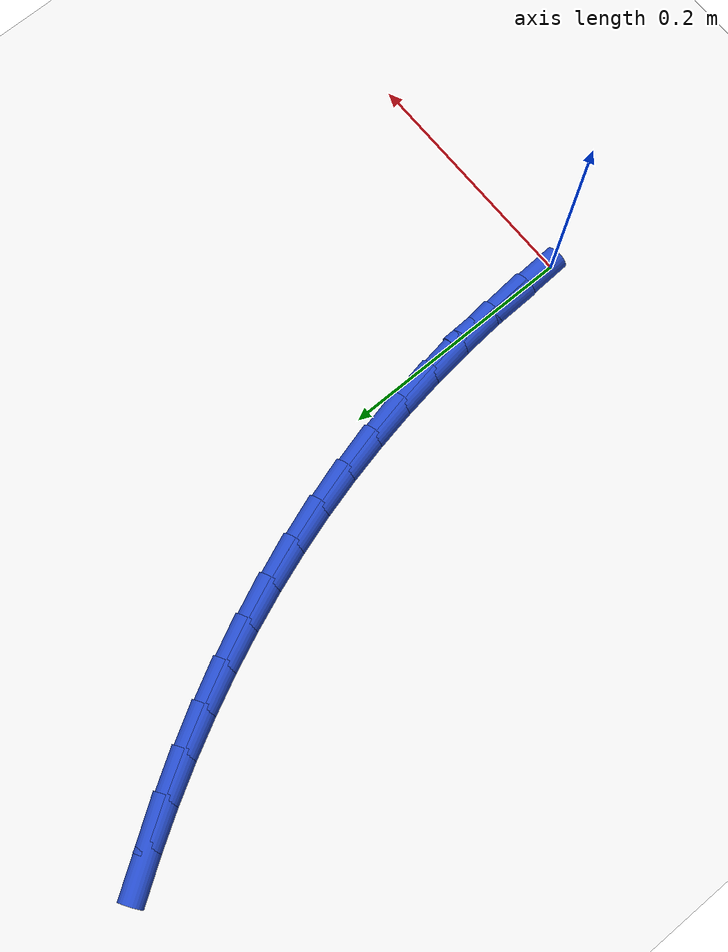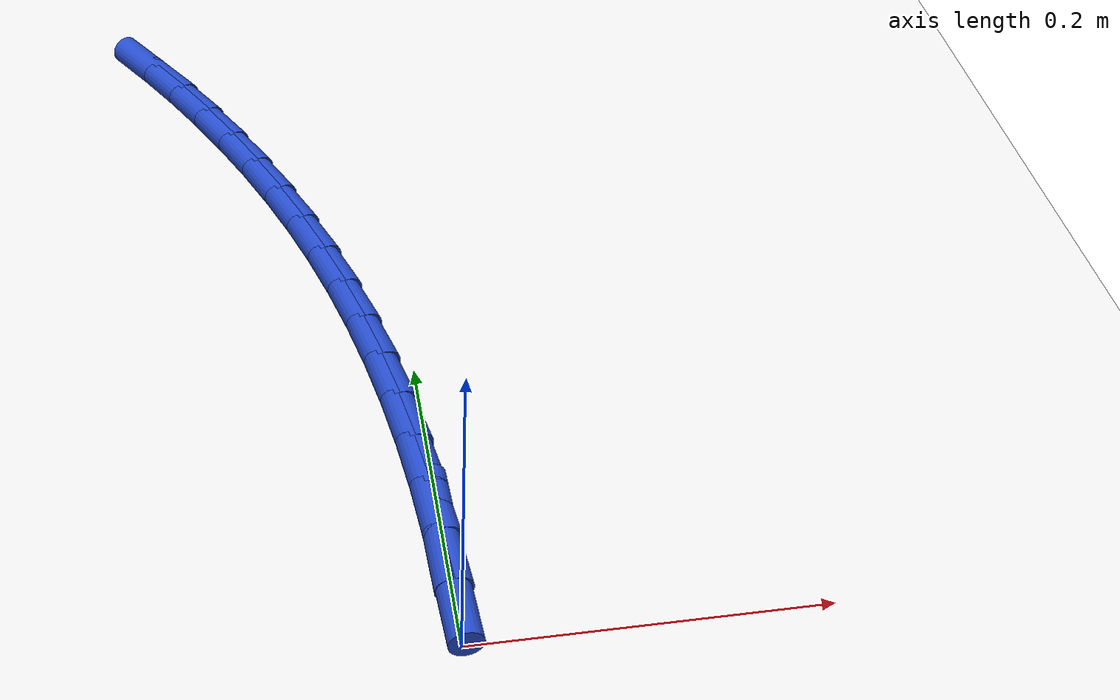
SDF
<sdf version="1.6">
 <world name="default">
  <model name="ground_plane">
   <static>1</static>
   <link name="link">
    <collision name="collision">
     <geometry><plane><normal>0 0 1</normal><size>100 100</size></plane></geometry>
     <surface><friction><ode><mu>100</mu><mu2>50</mu2></ode></friction></surface>
    </collision>
    <visual name="visual">
     <cast_shadows>0</cast_shadows>
     <geometry><plane><normal>0 0 1</normal><size>100 100</size></plane></geometry>
     <material>
      <script><uri>file://media/materials/scripts/gazebo.material</uri><name>Gazebo/WhiteGlow</name></script>
     </material>
    </visual>
   </link>
  </model>
  <model name="line">
   <link name="link_1">
    <pose>-0.0005671292059175227 0.034384046314379905 0.01 0 1.57 -1.5221937600335682</pose>
    <collision name="collision">
     <geometry><cylinder><radius>0.01</radius><length>0.08</length></cylinder></geometry>
    </collision>
    <visual name="visual">
     <material>
      <script><name>Gazebo/Blue</name><uri>file://media/materials/scripts/gazebo.material</uri></script>
     </material>
     <geometry><cylinder><radius>0.01</radius><length>0.08</length></cylinder></geometry>
    </visual>
   </link>
   <link name="link_2">
    <pose>-0.002233502790082787 0.06864275692588105 0.01 0 1.57 -1.4890286087418458</pose>
    <collision name="collision">
     <geometry><cylinder><radius>0.01</radius><length>0.08</length></cylinder></geometry>
    </collision>
    <visual name="visual">
     <material>
      <script><name>Gazebo/Blue</name><uri>file://media/materials/scripts/gazebo.material</uri></script>
     </material>
     <geometry><cylinder><radius>0.01</radius><length>0.08</length></cylinder></geometry>
    </visual>
   </link>
   <link name="link_3">
    <pose>-0.005029055808505154 0.10275548487936709 0.01 0 1.57 -1.4548206705582785</pose>
    <collision name="collision">
     <geometry><cylinder><radius>0.01</radius><length>0.08</length></cylinder></geometry>
    </collision>
    <visual name="visual">
     <material>
      <script><name>Gazebo/Blue</name><uri>file://media/materials/scripts/gazebo.material</uri></script>
     </material>
     <geometry><cylinder><radius>0.01</radius><length>0.08</length></cylinder></geometry>
    </visual>
   </link>
   <link name="link_4">
    <pose>-0.008983723317193992 0.13670158321970177 0.01 0 1.57 -1.4195926586835725</pose>
    <collision name="collision">
     <geometry><cylinder><radius>0.01</radius><length>0.08</length></cylinder></geometry>
    </collision>
    <visual name="visual">
     <material>
      <script><name>Gazebo/Blue</name><uri>file://media/materials/scripts/gazebo.material</uri></script>
     </material>
     <geometry><cylinder><radius>0.01</radius><length>0.08</length></cylinder></geometry>
    </visual>
   </link>
   <link name="link_5">
    <pose>-0.014127440372158667 0.17046040499174883 0.01 0 1.57 -1.3833787149878822</pose>
    <collision name="collision">
     <geometry><cylinder><radius>0.01</radius><length>0.08</length></cylinder></geometry>
    </collision>
    <visual name="visual">
     <material>
      <script><name>Gazebo/Blue</name><uri>file://media/materials/scripts/gazebo.material</uri></script>
     </material>
     <geometry><cylinder><radius>0.01</radius><length>0.08</length></cylinder></geometry>
    </visual>
   </link>
   <link name="link_6">
    <pose>-0.020490142029408548 0.2040113032403719 0.01 0 1.57 -1.3462252168017579</pose>
    <collision name="collision">
     <geometry><cylinder><radius>0.01</radius><length>0.08</length></cylinder></geometry>
    </collision>
    <visual name="visual">
     <material>
      <script><name>Gazebo/Blue</name><uri>file://media/materials/scripts/gazebo.material</uri></script>
     </material>
     <geometry><cylinder><radius>0.01</radius><length>0.08</length></cylinder></geometry>
    </visual>
   </link>
   <link name="link_7">
    <pose>-0.028101763344953012 0.2373336310104348 0.01 0 1.57 -1.3081913383421713</pose>
    <collision name="collision">
     <geometry><cylinder><radius>0.01</radius><length>0.08</length></cylinder></geometry>
    </collision>
    <visual name="visual">
     <material>
      <script><name>Gazebo/Blue</name><uri>file://media/materials/scripts/gazebo.material</uri></script>
     </material>
     <geometry><cylinder><radius>0.01</radius><length>0.08</length></cylinder></geometry>
    </visual>
   </link>
   <link name="link_8">
    <pose>-0.03699223937480141 0.2704067413468011 0.01 0 1.57 -1.2693551215662515</pose>
    <collision name="collision">
     <geometry><cylinder><radius>0.01</radius><length>0.08</length></cylinder></geometry>
    </collision>
    <visual name="visual">
     <material>
      <script><name>Gazebo/Blue</name><uri>file://media/materials/scripts/gazebo.material</uri></script>
     </material>
     <geometry><cylinder><radius>0.01</radius><length>0.08</length></cylinder></geometry>
    </visual>
   </link>
   <link name="link_9">
    <pose>-0.047191262276369904 0.30320988008475536 0.01 0 1.57 -1.2304243388916005</pose>
    <collision name="collision">
     <geometry><cylinder><radius>0.01</radius><length>0.08</length></cylinder></geometry>
    </collision>
    <visual name="visual">
     <material>
      <script><name>Gazebo/Blue</name><uri>file://media/materials/scripts/gazebo.material</uri></script>
     </material>
     <geometry><cylinder><radius>0.01</radius><length>0.08</length></cylinder></geometry>
    </visual>
   </link>
   <link name="link_10">
    <pose>-0.0587014843492248 0.3357103583186542 0.01 0 1.57 -1.1925507304561973</pose>
    <collision name="collision">
     <geometry><cylinder><radius>0.01</radius><length>0.08</length></cylinder></geometry>
    </collision>
    <visual name="visual">
     <material>
      <script><name>Gazebo/Blue</name><uri>file://media/materials/scripts/gazebo.material</uri></script>
     </material>
     <geometry><cylinder><radius>0.01</radius><length>0.08</length></cylinder></geometry>
    </visual>
   </link>
   <link name="link_11">
    <pose>-0.07147426167104569 0.3678528462280171 0.01 0 1.57 -1.1557287060929375</pose>
    <collision name="collision">
     <geometry><cylinder><radius>0.01</radius><length>0.08</length></cylinder></geometry>
    </collision>
    <visual name="visual">
     <material>
      <script><name>Gazebo/Blue</name><uri>file://media/materials/scripts/gazebo.material</uri></script>
     </material>
     <geometry><cylinder><radius>0.01</radius><length>0.08</length></cylinder></geometry>
    </visual>
   </link>
   <link name="link_12">
    <pose>-0.08545522337515178 0.3995794862572829 0.01 0 1.57 -1.119813882808674</pose>
    <collision name="collision">
     <geometry><cylinder><radius>0.01</radius><length>0.08</length></cylinder></geometry>
    </collision>
    <visual name="visual">
     <material>
      <script><name>Gazebo/Blue</name><uri>file://media/materials/scripts/gazebo.material</uri></script>
     </material>
     <geometry><cylinder><radius>0.01</radius><length>0.08</length></cylinder></geometry>
    </visual>
   </link>
   <link name="link_13">
    <pose>-0.10058999859486242 0.4308324208508911 0.01 0 1.57 -1.0846611023132795</pose>
    <collision name="collision">
     <geometry><cylinder><radius>0.01</radius><length>0.08</length></cylinder></geometry>
    </collision>
    <visual name="visual">
     <material>
      <script><name>Gazebo/Blue</name><uri>file://media/materials/scripts/gazebo.material</uri></script>
     </material>
     <geometry><cylinder><radius>0.01</radius><length>0.08</length></cylinder></geometry>
    </visual>
   </link>
   <link name="link_14">
    <pose>-0.11682421646349689 0.46155379245328065 0.01 0 1.57 -1.0501246384967802</pose>
    <collision name="collision">
     <geometry><cylinder><radius>0.01</radius><length>0.08</length></cylinder></geometry>
    </collision>
    <visual name="visual">
     <material>
      <script><name>Gazebo/Blue</name><uri>file://media/materials/scripts/gazebo.material</uri></script>
     </material>
     <geometry><cylinder><radius>0.01</radius><length>0.08</length></cylinder></geometry>
    </visual>
   </link>
   <link name="link_15">
    <pose>-0.13410350611437438 0.4916857435088907 0.01 0 1.57 -1.0160580395984238</pose>
    <collision name="collision">
     <geometry><cylinder><radius>0.01</radius><length>0.08</length></cylinder></geometry>
    </collision>
    <visual name="visual">
     <material>
      <script><name>Gazebo/Blue</name><uri>file://media/materials/scripts/gazebo.material</uri></script>
     </material>
     <geometry><cylinder><radius>0.01</radius><length>0.08</length></cylinder></geometry>
    </visual>
   </link>
   <link name="link_16">
    <pose>-0.15237349668081424 0.5211704164621606 0.01 0 1.57 -0.98231366994822</pose>
    <collision name="collision">
     <geometry><cylinder><radius>0.01</radius><length>0.08</length></cylinder></geometry>
    </collision>
    <visual name="visual">
     <material>
      <script><name>Gazebo/Blue</name><uri>file://media/materials/scripts/gazebo.material</uri></script>
     </material>
     <geometry><cylinder><radius>0.01</radius><length>0.08</length></cylinder></geometry>
    </visual>
   </link>
   <link name="link_212">
    <pose>-0.002147920829155499 0.06854694769637375 0.01 0 1.57 -1.5394715441171791</pose>
    <collision name="collision">
     <geometry><cylinder><radius>0.01</radius><length>0.08</length></cylinder></geometry>
    </collision>
    <visual name="visual">
     <material>
      <script><name>Gazebo/Blue</name><uri>file://media/materials/scripts/gazebo.material</uri></script>
     </material>
     <geometry><cylinder><radius>0.01</radius><length>0.08</length></cylinder></geometry>
    </visual>
   </link>
  </model>
 </world>
</sdf>
